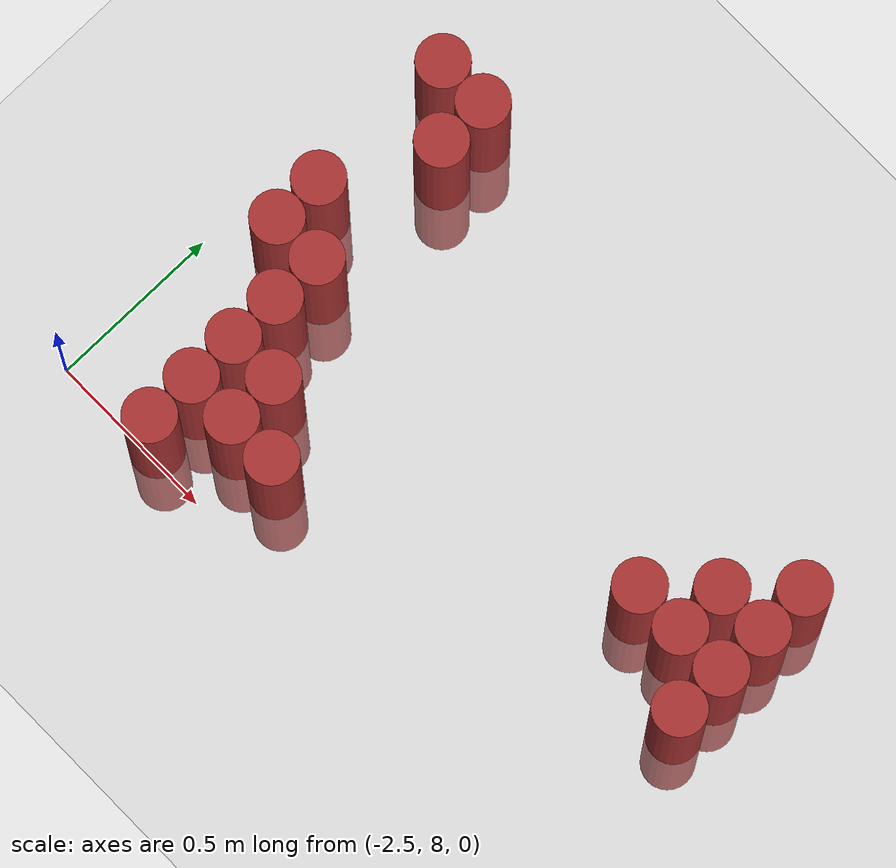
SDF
<sdf version="1.6">
 <world name="default">
  <model name="ground_plane">
   <static>1</static>
   <link name="link">
    <collision name="collision">
     <geometry><plane><normal>0 0 1</normal><size>100 100</size></plane></geometry>
     <surface><friction><ode><mu>100</mu><mu2>50</mu2></ode></friction></surface>
    </collision>
    <visual name="visual">
     <cast_shadows>0</cast_shadows>
     <geometry><plane><normal>0 0 1</normal><size>100 100</size></plane></geometry>
     <material>
      <script><uri>file://media/materials/scripts/gazebo.material</uri><name>Gazebo/Grey</name></script>
     </material>
    </visual>
   </link>
  </model>
  <model name="unit_cylinder_204">
   <static>1</static>
   <pose>-2.325000 8.625000 0.000000 0.000000 0.000000 0.000000</pose>
   <link name="link">
    <inertial>
     <mass>1</mass>
     <inertia><ixx>0.145833</ixx><ixy>0</ixy><ixz>0</ixz><iyy>0.145833</iyy><iyz>0</iyz><izz>0.125</izz></inertia>
    </inertial>
    <collision name="collision">
     <geometry><cylinder><radius>0.075000</radius><length>1</length></cylinder></geometry>
    </collision>
    <visual name="visual">
     <geometry><cylinder><radius>0.075000</radius><length>1</length></cylinder></geometry>
     <material>
      <ambient>0.648000 0.192000 0.192000 1</ambient>
      <diffuse>0.648000 0.192000 0.192000 1</diffuse>
     </material>
     <material>
      <script><name>Gazebo/Grey</name><uri>file://media/materials/scripts/gazebo.material</uri></script>
     </material>
    </visual>
    <sensor name="sensor_contact" type="contact"><contact><collision>collision</collision></contact></sensor>
   </link>
   <plugin filename="gz-sim-touchplugin-system" name="gz::sim::systems::TouchPlugin">
    <target>robot</target>
    <namespace>robot</namespace>
    <time>0.001</time>
    <enabled>true</enabled>
   </plugin>
  </model>
  <model name="unit_cylinder_205">
   <static>1</static>
   <pose>-2.325000 8.775000 0.000000 0.000000 0.000000 0.000000</pose>
   <link name="link">
    <inertial>
     <mass>1</mass>
     <inertia><ixx>0.145833</ixx><ixy>0</ixy><ixz>0</ixz><iyy>0.145833</iyy><iyz>0</iyz><izz>0.125</izz></inertia>
    </inertial>
    <collision name="collision">
     <geometry><cylinder><radius>0.075000</radius><length>1</length></cylinder></geometry>
    </collision>
    <visual name="visual">
     <geometry><cylinder><radius>0.075000</radius><length>1</length></cylinder></geometry>
     <material>
      <ambient>0.648000 0.192000 0.192000 1</ambient>
      <diffuse>0.648000 0.192000 0.192000 1</diffuse>
     </material>
     <material>
      <script><name>Gazebo/Grey</name><uri>file://media/materials/scripts/gazebo.material</uri></script>
     </material>
    </visual>
    <sensor name="sensor_contact" type="contact"><contact><collision>collision</collision></contact></sensor>
   </link>
   <plugin filename="gz-sim-touchplugin-system" name="gz::sim::systems::TouchPlugin">
    <target>robot</target>
    <namespace>robot</namespace>
    <time>0.001</time>
    <enabled>true</enabled>
   </plugin>
  </model>
  <model name="unit_cylinder_206">
   <static>1</static>
   <pose>-2.325000 9.225000 0.000000 0.000000 0.000000 0.000000</pose>
   <link name="link">
    <inertial>
     <mass>1</mass>
     <inertia><ixx>0.145833</ixx><ixy>0</ixy><ixz>0</ixz><iyy>0.145833</iyy><iyz>0</iyz><izz>0.125</izz></inertia>
    </inertial>
    <collision name="collision">
     <geometry><cylinder><radius>0.075000</radius><length>1</length></cylinder></geometry>
    </collision>
    <visual name="visual">
     <geometry><cylinder><radius>0.075000</radius><length>1</length></cylinder></geometry>
     <material>
      <ambient>0.648000 0.192000 0.192000 1</ambient>
      <diffuse>0.648000 0.192000 0.192000 1</diffuse>
     </material>
     <material>
      <script><name>Gazebo/Grey</name><uri>file://media/materials/scripts/gazebo.material</uri></script>
     </material>
    </visual>
    <sensor name="sensor_contact" type="contact"><contact><collision>collision</collision></contact></sensor>
   </link>
   <plugin filename="gz-sim-touchplugin-system" name="gz::sim::systems::TouchPlugin">
    <target>robot</target>
    <namespace>robot</namespace>
    <time>0.001</time>
    <enabled>true</enabled>
   </plugin>
  </model>
  <model name="unit_cylinder_207">
   <static>1</static>
   <pose>-2.175000 8.025000 0.000000 0.000000 0.000000 0.000000</pose>
   <link name="link">
    <inertial>
     <mass>1</mass>
     <inertia><ixx>0.145833</ixx><ixy>0</ixy><ixz>0</ixz><iyy>0.145833</iyy><iyz>0</iyz><izz>0.125</izz></inertia>
    </inertial>
    <collision name="collision">
     <geometry><cylinder><radius>0.075000</radius><length>1</length></cylinder></geometry>
    </collision>
    <visual name="visual">
     <geometry><cylinder><radius>0.075000</radius><length>1</length></cylinder></geometry>
     <material>
      <ambient>0.648000 0.192000 0.192000 1</ambient>
      <diffuse>0.648000 0.192000 0.192000 1</diffuse>
     </material>
     <material>
      <script><name>Gazebo/Grey</name><uri>file://media/materials/scripts/gazebo.material</uri></script>
     </material>
    </visual>
    <sensor name="sensor_contact" type="contact"><contact><collision>collision</collision></contact></sensor>
   </link>
   <plugin filename="gz-sim-touchplugin-system" name="gz::sim::systems::TouchPlugin">
    <target>robot</target>
    <namespace>robot</namespace>
    <time>0.001</time>
    <enabled>true</enabled>
   </plugin>
  </model>
  <model name="unit_cylinder_208">
   <static>1</static>
   <pose>-2.175000 8.175000 0.000000 0.000000 0.000000 0.000000</pose>
   <link name="link">
    <inertial>
     <mass>1</mass>
     <inertia><ixx>0.145833</ixx><ixy>0</ixy><ixz>0</ixz><iyy>0.145833</iyy><iyz>0</iyz><izz>0.125</izz></inertia>
    </inertial>
    <collision name="collision">
     <geometry><cylinder><radius>0.075000</radius><length>1</length></cylinder></geometry>
    </collision>
    <visual name="visual">
     <geometry><cylinder><radius>0.075000</radius><length>1</length></cylinder></geometry>
     <material>
      <ambient>0.648000 0.192000 0.192000 1</ambient>
      <diffuse>0.648000 0.192000 0.192000 1</diffuse>
     </material>
     <material>
      <script><name>Gazebo/Grey</name><uri>file://media/materials/scripts/gazebo.material</uri></script>
     </material>
    </visual>
    <sensor name="sensor_contact" type="contact"><contact><collision>collision</collision></contact></sensor>
   </link>
   <plugin filename="gz-sim-touchplugin-system" name="gz::sim::systems::TouchPlugin">
    <target>robot</target>
    <namespace>robot</namespace>
    <time>0.001</time>
    <enabled>true</enabled>
   </plugin>
  </model>
  <model name="unit_cylinder_209">
   <static>1</static>
   <pose>-2.175000 8.325000 0.000000 0.000000 0.000000 0.000000</pose>
   <link name="link">
    <inertial>
     <mass>1</mass>
     <inertia><ixx>0.145833</ixx><ixy>0</ixy><ixz>0</ixz><iyy>0.145833</iyy><iyz>0</iyz><izz>0.125</izz></inertia>
    </inertial>
    <collision name="collision">
     <geometry><cylinder><radius>0.075000</radius><length>1</length></cylinder></geometry>
    </collision>
    <visual name="visual">
     <geometry><cylinder><radius>0.075000</radius><length>1</length></cylinder></geometry>
     <material>
      <ambient>0.648000 0.192000 0.192000 1</ambient>
      <diffuse>0.648000 0.192000 0.192000 1</diffuse>
     </material>
     <material>
      <script><name>Gazebo/Grey</name><uri>file://media/materials/scripts/gazebo.material</uri></script>
     </material>
    </visual>
    <sensor name="sensor_contact" type="contact"><contact><collision>collision</collision></contact></sensor>
   </link>
   <plugin filename="gz-sim-touchplugin-system" name="gz::sim::systems::TouchPlugin">
    <target>robot</target>
    <namespace>robot</namespace>
    <time>0.001</time>
    <enabled>true</enabled>
   </plugin>
  </model>
  <model name="unit_cylinder_210">
   <static>1</static>
   <pose>-2.175000 8.475000 0.000000 0.000000 0.000000 0.000000</pose>
   <link name="link">
    <inertial>
     <mass>1</mass>
     <inertia><ixx>0.145833</ixx><ixy>0</ixy><ixz>0</ixz><iyy>0.145833</iyy><iyz>0</iyz><izz>0.125</izz></inertia>
    </inertial>
    <collision name="collision">
     <geometry><cylinder><radius>0.075000</radius><length>1</length></cylinder></geometry>
    </collision>
    <visual name="visual">
     <geometry><cylinder><radius>0.075000</radius><length>1</length></cylinder></geometry>
     <material>
      <ambient>0.648000 0.192000 0.192000 1</ambient>
      <diffuse>0.648000 0.192000 0.192000 1</diffuse>
     </material>
     <material>
      <script><name>Gazebo/Grey</name><uri>file://media/materials/scripts/gazebo.material</uri></script>
     </material>
    </visual>
    <sensor name="sensor_contact" type="contact"><contact><collision>collision</collision></contact></sensor>
   </link>
   <plugin filename="gz-sim-touchplugin-system" name="gz::sim::systems::TouchPlugin">
    <target>robot</target>
    <namespace>robot</namespace>
    <time>0.001</time>
    <enabled>true</enabled>
   </plugin>
  </model>
  <model name="unit_cylinder_211">
   <static>1</static>
   <pose>-2.175000 8.625000 0.000000 0.000000 0.000000 0.000000</pose>
   <link name="link">
    <inertial>
     <mass>1</mass>
     <inertia><ixx>0.145833</ixx><ixy>0</ixy><ixz>0</ixz><iyy>0.145833</iyy><iyz>0</iyz><izz>0.125</izz></inertia>
    </inertial>
    <collision name="collision">
     <geometry><cylinder><radius>0.075000</radius><length>1</length></cylinder></geometry>
    </collision>
    <visual name="visual">
     <geometry><cylinder><radius>0.075000</radius><length>1</length></cylinder></geometry>
     <material>
      <ambient>0.648000 0.192000 0.192000 1</ambient>
      <diffuse>0.648000 0.192000 0.192000 1</diffuse>
     </material>
     <material>
      <script><name>Gazebo/Grey</name><uri>file://media/materials/scripts/gazebo.material</uri></script>
     </material>
    </visual>
    <sensor name="sensor_contact" type="contact"><contact><collision>collision</collision></contact></sensor>
   </link>
   <plugin filename="gz-sim-touchplugin-system" name="gz::sim::systems::TouchPlugin">
    <target>robot</target>
    <namespace>robot</namespace>
    <time>0.001</time>
    <enabled>true</enabled>
   </plugin>
  </model>
  <model name="unit_cylinder_212">
   <static>1</static>
   <pose>-2.175000 9.075000 0.000000 0.000000 0.000000 0.000000</pose>
   <link name="link">
    <inertial>
     <mass>1</mass>
     <inertia><ixx>0.145833</ixx><ixy>0</ixy><ixz>0</ixz><iyy>0.145833</iyy><iyz>0</iyz><izz>0.125</izz></inertia>
    </inertial>
    <collision name="collision">
     <geometry><cylinder><radius>0.075000</radius><length>1</length></cylinder></geometry>
    </collision>
    <visual name="visual">
     <geometry><cylinder><radius>0.075000</radius><length>1</length></cylinder></geometry>
     <material>
      <ambient>0.648000 0.192000 0.192000 1</ambient>
      <diffuse>0.648000 0.192000 0.192000 1</diffuse>
     </material>
     <material>
      <script><name>Gazebo/Grey</name><uri>file://media/materials/scripts/gazebo.material</uri></script>
     </material>
    </visual>
    <sensor name="sensor_contact" type="contact"><contact><collision>collision</collision></contact></sensor>
   </link>
   <plugin filename="gz-sim-touchplugin-system" name="gz::sim::systems::TouchPlugin">
    <target>robot</target>
    <namespace>robot</namespace>
    <time>0.001</time>
    <enabled>true</enabled>
   </plugin>
  </model>
  <model name="unit_cylinder_213">
   <static>1</static>
   <pose>-2.175000 9.225000 0.000000 0.000000 0.000000 0.000000</pose>
   <link name="link">
    <inertial>
     <mass>1</mass>
     <inertia><ixx>0.145833</ixx><ixy>0</ixy><ixz>0</ixz><iyy>0.145833</iyy><iyz>0</iyz><izz>0.125</izz></inertia>
    </inertial>
    <collision name="collision">
     <geometry><cylinder><radius>0.075000</radius><length>1</length></cylinder></geometry>
    </collision>
    <visual name="visual">
     <geometry><cylinder><radius>0.075000</radius><length>1</length></cylinder></geometry>
     <material>
      <ambient>0.648000 0.192000 0.192000 1</ambient>
      <diffuse>0.648000 0.192000 0.192000 1</diffuse>
     </material>
     <material>
      <script><name>Gazebo/Grey</name><uri>file://media/materials/scripts/gazebo.material</uri></script>
     </material>
    </visual>
    <sensor name="sensor_contact" type="contact"><contact><collision>collision</collision></contact></sensor>
   </link>
   <plugin filename="gz-sim-touchplugin-system" name="gz::sim::systems::TouchPlugin">
    <target>robot</target>
    <namespace>robot</namespace>
    <time>0.001</time>
    <enabled>true</enabled>
   </plugin>
  </model>
  <model name="unit_cylinder_214">
   <static>1</static>
   <pose>-2.025000 8.175000 0.000000 0.000000 0.000000 0.000000</pose>
   <link name="link">
    <inertial>
     <mass>1</mass>
     <inertia><ixx>0.145833</ixx><ixy>0</ixy><ixz>0</ixz><iyy>0.145833</iyy><iyz>0</iyz><izz>0.125</izz></inertia>
    </inertial>
    <collision name="collision">
     <geometry><cylinder><radius>0.075000</radius><length>1</length></cylinder></geometry>
    </collision>
    <visual name="visual">
     <geometry><cylinder><radius>0.075000</radius><length>1</length></cylinder></geometry>
     <material>
      <ambient>0.648000 0.192000 0.192000 1</ambient>
      <diffuse>0.648000 0.192000 0.192000 1</diffuse>
     </material>
     <material>
      <script><name>Gazebo/Grey</name><uri>file://media/materials/scripts/gazebo.material</uri></script>
     </material>
    </visual>
    <sensor name="sensor_contact" type="contact"><contact><collision>collision</collision></contact></sensor>
   </link>
   <plugin filename="gz-sim-touchplugin-system" name="gz::sim::systems::TouchPlugin">
    <target>robot</target>
    <namespace>robot</namespace>
    <time>0.001</time>
    <enabled>true</enabled>
   </plugin>
  </model>
  <model name="unit_cylinder_215">
   <static>1</static>
   <pose>-2.025000 8.325000 0.000000 0.000000 0.000000 0.000000</pose>
   <link name="link">
    <inertial>
     <mass>1</mass>
     <inertia><ixx>0.145833</ixx><ixy>0</ixy><ixz>0</ixz><iyy>0.145833</iyy><iyz>0</iyz><izz>0.125</izz></inertia>
    </inertial>
    <collision name="collision">
     <geometry><cylinder><radius>0.075000</radius><length>1</length></cylinder></geometry>
    </collision>
    <visual name="visual">
     <geometry><cylinder><radius>0.075000</radius><length>1</length></cylinder></geometry>
     <material>
      <ambient>0.648000 0.192000 0.192000 1</ambient>
      <diffuse>0.648000 0.192000 0.192000 1</diffuse>
     </material>
     <material>
      <script><name>Gazebo/Grey</name><uri>file://media/materials/scripts/gazebo.material</uri></script>
     </material>
    </visual>
    <sensor name="sensor_contact" type="contact"><contact><collision>collision</collision></contact></sensor>
   </link>
   <plugin filename="gz-sim-touchplugin-system" name="gz::sim::systems::TouchPlugin">
    <target>robot</target>
    <namespace>robot</namespace>
    <time>0.001</time>
    <enabled>true</enabled>
   </plugin>
  </model>
  <model name="unit_cylinder_216">
   <static>1</static>
   <pose>-1.875000 8.175000 0.000000 0.000000 0.000000 0.000000</pose>
   <link name="link">
    <inertial>
     <mass>1</mass>
     <inertia><ixx>0.145833</ixx><ixy>0</ixy><ixz>0</ixz><iyy>0.145833</iyy><iyz>0</iyz><izz>0.125</izz></inertia>
    </inertial>
    <collision name="collision">
     <geometry><cylinder><radius>0.075000</radius><length>1</length></cylinder></geometry>
    </collision>
    <visual name="visual">
     <geometry><cylinder><radius>0.075000</radius><length>1</length></cylinder></geometry>
     <material>
      <ambient>0.648000 0.192000 0.192000 1</ambient>
      <diffuse>0.648000 0.192000 0.192000 1</diffuse>
     </material>
     <material>
      <script><name>Gazebo/Grey</name><uri>file://media/materials/scripts/gazebo.material</uri></script>
     </material>
    </visual>
    <sensor name="sensor_contact" type="contact"><contact><collision>collision</collision></contact></sensor>
   </link>
   <plugin filename="gz-sim-touchplugin-system" name="gz::sim::systems::TouchPlugin">
    <target>robot</target>
    <namespace>robot</namespace>
    <time>0.001</time>
    <enabled>true</enabled>
   </plugin>
  </model>
  <model name="unit_cylinder_232">
   <static>1</static>
   <pose>-0.975000 8.625000 0.000000 0.000000 0.000000 0.000000</pose>
   <link name="link">
    <inertial>
     <mass>1</mass>
     <inertia><ixx>0.145833</ixx><ixy>0</ixy><ixz>0</ixz><iyy>0.145833</iyy><iyz>0</iyz><izz>0.125</izz></inertia>
    </inertial>
    <collision name="collision">
     <geometry><cylinder><radius>0.075000</radius><length>1</length></cylinder></geometry>
    </collision>
    <visual name="visual">
     <geometry><cylinder><radius>0.075000</radius><length>1</length></cylinder></geometry>
     <material>
      <ambient>0.648000 0.192000 0.192000 1</ambient>
      <diffuse>0.648000 0.192000 0.192000 1</diffuse>
     </material>
     <material>
      <script><name>Gazebo/Grey</name><uri>file://media/materials/scripts/gazebo.material</uri></script>
     </material>
    </visual>
    <sensor name="sensor_contact" type="contact"><contact><collision>collision</collision></contact></sensor>
   </link>
   <plugin filename="gz-sim-touchplugin-system" name="gz::sim::systems::TouchPlugin">
    <target>robot</target>
    <namespace>robot</namespace>
    <time>0.001</time>
    <enabled>true</enabled>
   </plugin>
  </model>
  <model name="unit_cylinder_242">
   <static>1</static>
   <pose>-0.825000 8.625000 0.000000 0.000000 0.000000 0.000000</pose>
   <link name="link">
    <inertial>
     <mass>1</mass>
     <inertia><ixx>0.145833</ixx><ixy>0</ixy><ixz>0</ixz><iyy>0.145833</iyy><iyz>0</iyz><izz>0.125</izz></inertia>
    </inertial>
    <collision name="collision">
     <geometry><cylinder><radius>0.075000</radius><length>1</length></cylinder></geometry>
    </collision>
    <visual name="visual">
     <geometry><cylinder><radius>0.075000</radius><length>1</length></cylinder></geometry>
     <material>
      <ambient>0.648000 0.192000 0.192000 1</ambient>
      <diffuse>0.648000 0.192000 0.192000 1</diffuse>
     </material>
     <material>
      <script><name>Gazebo/Grey</name><uri>file://media/materials/scripts/gazebo.material</uri></script>
     </material>
    </visual>
    <sensor name="sensor_contact" type="contact"><contact><collision>collision</collision></contact></sensor>
   </link>
   <plugin filename="gz-sim-touchplugin-system" name="gz::sim::systems::TouchPlugin">
    <target>robot</target>
    <namespace>robot</namespace>
    <time>0.001</time>
    <enabled>true</enabled>
   </plugin>
  </model>
  <model name="unit_cylinder_243">
   <static>1</static>
   <pose>-0.825000 8.775000 0.000000 0.000000 0.000000 0.000000</pose>
   <link name="link">
    <inertial>
     <mass>1</mass>
     <inertia><ixx>0.145833</ixx><ixy>0</ixy><ixz>0</ixz><iyy>0.145833</iyy><iyz>0</iyz><izz>0.125</izz></inertia>
    </inertial>
    <collision name="collision">
     <geometry><cylinder><radius>0.075000</radius><length>1</length></cylinder></geometry>
    </collision>
    <visual name="visual">
     <geometry><cylinder><radius>0.075000</radius><length>1</length></cylinder></geometry>
     <material>
      <ambient>0.648000 0.192000 0.192000 1</ambient>
      <diffuse>0.648000 0.192000 0.192000 1</diffuse>
     </material>
     <material>
      <script><name>Gazebo/Grey</name><uri>file://media/materials/scripts/gazebo.material</uri></script>
     </material>
    </visual>
    <sensor name="sensor_contact" type="contact"><contact><collision>collision</collision></contact></sensor>
   </link>
   <plugin filename="gz-sim-touchplugin-system" name="gz::sim::systems::TouchPlugin">
    <target>robot</target>
    <namespace>robot</namespace>
    <time>0.001</time>
    <enabled>true</enabled>
   </plugin>
  </model>
  <model name="unit_cylinder_253">
   <static>1</static>
   <pose>-0.675000 8.475000 0.000000 0.000000 0.000000 0.000000</pose>
   <link name="link">
    <inertial>
     <mass>1</mass>
     <inertia><ixx>0.145833</ixx><ixy>0</ixy><ixz>0</ixz><iyy>0.145833</iyy><iyz>0</iyz><izz>0.125</izz></inertia>
    </inertial>
    <collision name="collision">
     <geometry><cylinder><radius>0.075000</radius><length>1</length></cylinder></geometry>
    </collision>
    <visual name="visual">
     <geometry><cylinder><radius>0.075000</radius><length>1</length></cylinder></geometry>
     <material>
      <ambient>0.648000 0.192000 0.192000 1</ambient>
      <diffuse>0.648000 0.192000 0.192000 1</diffuse>
     </material>
     <material>
      <script><name>Gazebo/Grey</name><uri>file://media/materials/scripts/gazebo.material</uri></script>
     </material>
    </visual>
    <sensor name="sensor_contact" type="contact"><contact><collision>collision</collision></contact></sensor>
   </link>
   <plugin filename="gz-sim-touchplugin-system" name="gz::sim::systems::TouchPlugin">
    <target>robot</target>
    <namespace>robot</namespace>
    <time>0.001</time>
    <enabled>true</enabled>
   </plugin>
  </model>
  <model name="unit_cylinder_254">
   <static>1</static>
   <pose>-0.675000 8.625000 0.000000 0.000000 0.000000 0.000000</pose>
   <link name="link">
    <inertial>
     <mass>1</mass>
     <inertia><ixx>0.145833</ixx><ixy>0</ixy><ixz>0</ixz><iyy>0.145833</iyy><iyz>0</iyz><izz>0.125</izz></inertia>
    </inertial>
    <collision name="collision">
     <geometry><cylinder><radius>0.075000</radius><length>1</length></cylinder></geometry>
    </collision>
    <visual name="visual">
     <geometry><cylinder><radius>0.075000</radius><length>1</length></cylinder></geometry>
     <material>
      <ambient>0.648000 0.192000 0.192000 1</ambient>
      <diffuse>0.648000 0.192000 0.192000 1</diffuse>
     </material>
     <material>
      <script><name>Gazebo/Grey</name><uri>file://media/materials/scripts/gazebo.material</uri></script>
     </material>
    </visual>
    <sensor name="sensor_contact" type="contact"><contact><collision>collision</collision></contact></sensor>
   </link>
   <plugin filename="gz-sim-touchplugin-system" name="gz::sim::systems::TouchPlugin">
    <target>robot</target>
    <namespace>robot</namespace>
    <time>0.001</time>
    <enabled>true</enabled>
   </plugin>
  </model>
  <model name="unit_cylinder_255">
   <static>1</static>
   <pose>-0.675000 8.775000 0.000000 0.000000 0.000000 0.000000</pose>
   <link name="link">
    <inertial>
     <mass>1</mass>
     <inertia><ixx>0.145833</ixx><ixy>0</ixy><ixz>0</ixz><iyy>0.145833</iyy><iyz>0</iyz><izz>0.125</izz></inertia>
    </inertial>
    <collision name="collision">
     <geometry><cylinder><radius>0.075000</radius><length>1</length></cylinder></geometry>
    </collision>
    <visual name="visual">
     <geometry><cylinder><radius>0.075000</radius><length>1</length></cylinder></geometry>
     <material>
      <ambient>0.648000 0.192000 0.192000 1</ambient>
      <diffuse>0.648000 0.192000 0.192000 1</diffuse>
     </material>
     <material>
      <script><name>Gazebo/Grey</name><uri>file://media/materials/scripts/gazebo.material</uri></script>
     </material>
    </visual>
    <sensor name="sensor_contact" type="contact"><contact><collision>collision</collision></contact></sensor>
   </link>
   <plugin filename="gz-sim-touchplugin-system" name="gz::sim::systems::TouchPlugin">
    <target>robot</target>
    <namespace>robot</namespace>
    <time>0.001</time>
    <enabled>true</enabled>
   </plugin>
  </model>
  <model name="unit_cylinder_256">
   <static>1</static>
   <pose>-0.675000 8.925000 0.000000 0.000000 0.000000 0.000000</pose>
   <link name="link">
    <inertial>
     <mass>1</mass>
     <inertia><ixx>0.145833</ixx><ixy>0</ixy><ixz>0</ixz><iyy>0.145833</iyy><iyz>0</iyz><izz>0.125</izz></inertia>
    </inertial>
    <collision name="collision">
     <geometry><cylinder><radius>0.075000</radius><length>1</length></cylinder></geometry>
    </collision>
    <visual name="visual">
     <geometry><cylinder><radius>0.075000</radius><length>1</length></cylinder></geometry>
     <material>
      <ambient>0.648000 0.192000 0.192000 1</ambient>
      <diffuse>0.648000 0.192000 0.192000 1</diffuse>
     </material>
     <material>
      <script><name>Gazebo/Grey</name><uri>file://media/materials/scripts/gazebo.material</uri></script>
     </material>
    </visual>
    <sensor name="sensor_contact" type="contact"><contact><collision>collision</collision></contact></sensor>
   </link>
   <plugin filename="gz-sim-touchplugin-system" name="gz::sim::systems::TouchPlugin">
    <target>robot</target>
    <namespace>robot</namespace>
    <time>0.001</time>
    <enabled>true</enabled>
   </plugin>
  </model>
 </world>
</sdf>
